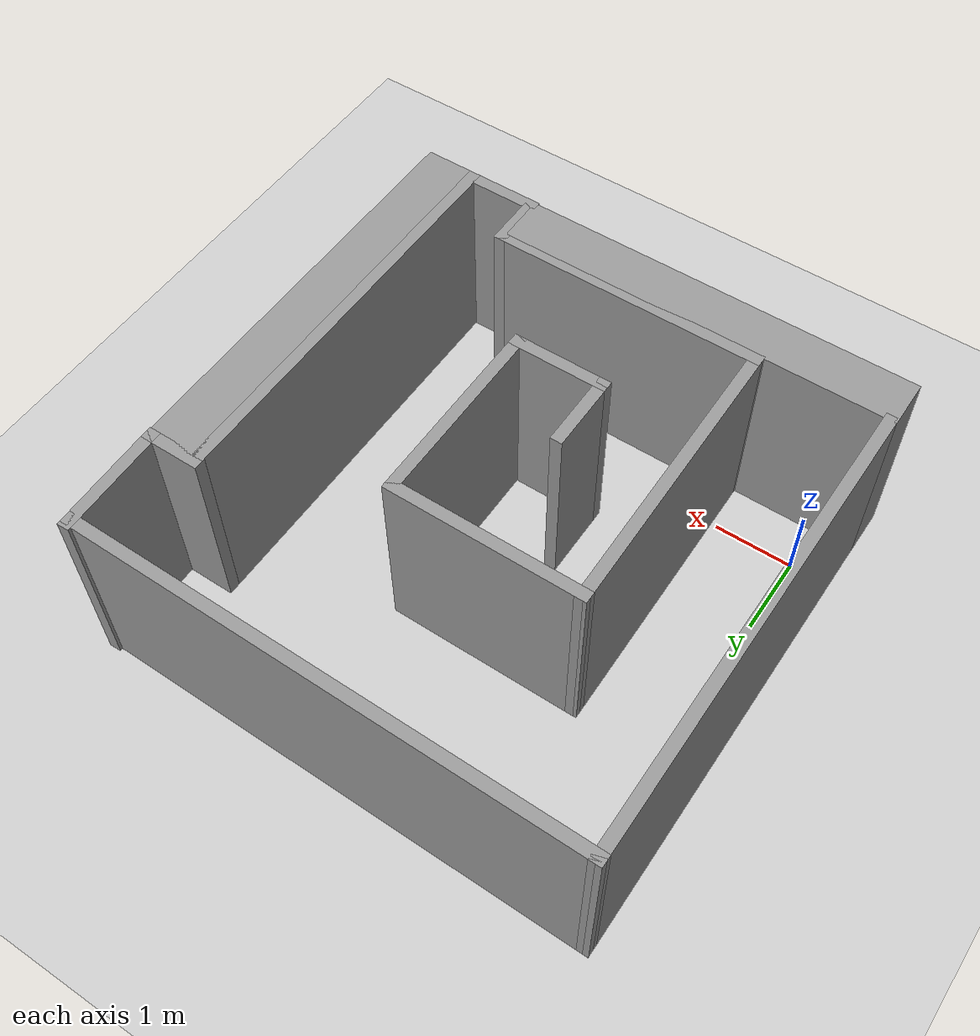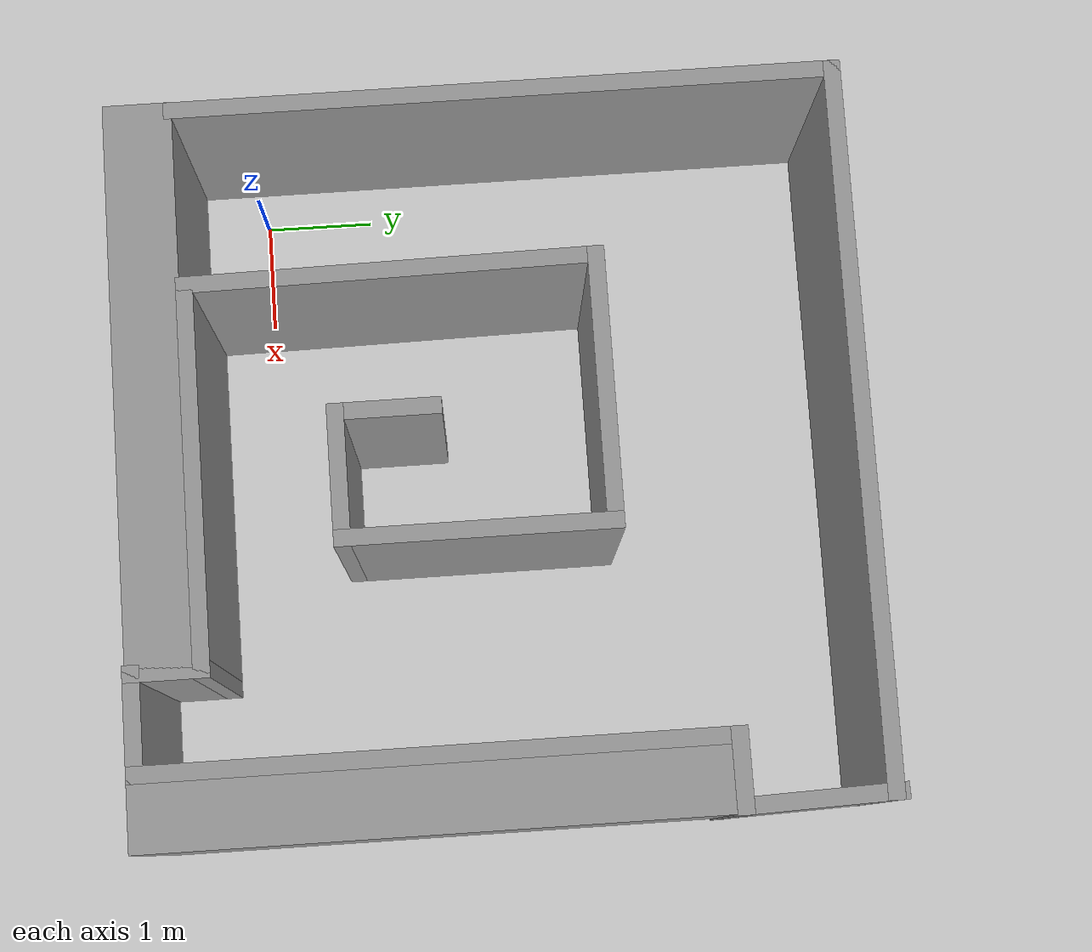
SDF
<sdf version="1.7">
 <world name="default">
  <scene><ambient>0.4 0.4 0.4 1</ambient><background>0.7 0.7 0.7 1</background><shadows>1</shadows></scene>
  <light name="sun" type="directional">
   <pose>0 0 10 0 -0 0</pose>
   <diffuse>0.8 0.8 0.8 1</diffuse>
   <specular>0.2 0.2 0.2 1</specular>
   <attenuation>
    <range>1000</range>
    <constant>0.9</constant>
    <linear>0.01</linear>
    <quadratic>0.001</quadratic>
   </attenuation>
   <direction>-0.5 0.1 -0.9</direction>
   <spot><inner_angle>0</inner_angle><outer_angle>0</outer_angle><falloff>0</falloff></spot>
  </light>
  <model name="ground_plane">
   <static>1</static>
   <link name="link">
    <collision name="collision">
     <geometry><plane><normal>0 0 1</normal><size>100 100</size></plane></geometry>
     <surface>
      <contact><collide_bitmask>65535</collide_bitmask></contact>
      <friction><ode><mu>100</mu><mu2>50</mu2></ode></friction>
     </surface>
    </collision>
    <visual name="visual">
     <cast_shadows>0</cast_shadows>
     <geometry><plane><normal>0 0 1</normal><size>100 100</size></plane></geometry>
     <material>
      <script><uri>file://media/materials/scripts/gazebo.material</uri><name>Gazebo/Grey</name></script>
     </material>
    </visual>
   </link>
  </model>
  <physics type="ode">
   <real_time_update_rate>1000</real_time_update_rate>
   <max_step_size>0.001</max_step_size>
   <real_time_factor>1</real_time_factor>
   <ode>
    <solver>
     <type>quick</type>
     <iters>150</iters>
     <precon_iters>0</precon_iters>
     <sor>1.4</sor>
     <use_dynamic_moi_rescaling>1</use_dynamic_moi_rescaling>
    </solver>
    <constraints>
     <cfm>1e-05</cfm>
     <erp>0.2</erp>
     <contact_max_correcting_vel>2000</contact_max_correcting_vel>
     <contact_surface_layer>0.01</contact_surface_layer>
    </constraints>
   </ode>
  </physics>
  <gravity>0 0 -9.8</gravity>
  <magnetic_field>6e-06 2.3e-05 -4.2e-05</magnetic_field>
  <atmosphere type="adiabatic"/>
  <spherical_coordinates>
   <surface_model>EARTH_WGS84</surface_model>
   <latitude_deg>0</latitude_deg>
   <longitude_deg>0</longitude_deg>
   <elevation>0</elevation>
   <heading_deg>0</heading_deg>
  </spherical_coordinates>
  <audio><device>default</device></audio>
  <model name="world1">
   <link name="Wall_10">
    <pose>3.20196 -4.37945 0 0 -0 1.5708</pose>
    <visual name="Wall_10_Visual">
     <pose>0 0 1.25 0 -0 0</pose>
     <geometry><box><size>0.75 0.15 2.5</size></box></geometry>
     <material>
      <script><uri>file://media/materials/scripts/gazebo.material</uri><name>Gazebo/Grey</name></script>
      <ambient>1 1 1 1</ambient>
      <shader type="pixel"/>
     </material>
     <meta><layer>0</layer></meta>
    </visual>
    <collision name="Wall_10_Collision">
     <pose>0 0 1.25 0 -0 0</pose>
     <geometry><box><size>0.75 0.15 2.5</size></box></geometry>
     <surface>
      <friction>
       <ode><mu>1</mu><mu2>1</mu2><fdir1>0 0 0</fdir1><slip1>0</slip1><slip2>0</slip2></ode>
       <torsional>
        <coefficient>1</coefficient>
        <patch_radius>0</patch_radius>
        <surface_radius>0</surface_radius>
        <use_patch_radius>1</use_patch_radius>
        <ode><slip>0</slip></ode>
       </torsional>
      </friction>
      <bounce><restitution_coefficient>0</restitution_coefficient><threshold>1e+06</threshold></bounce>
      <contact>
       <collide_without_contact>0</collide_without_contact>
       <collide_without_contact_bitmask>1</collide_without_contact_bitmask>
       <collide_bitmask>1</collide_bitmask>
       <ode>
        <soft_cfm>0</soft_cfm>
        <soft_erp>0.2</soft_erp>
        <kp>1e+13</kp>
        <kd>1</kd>
        <max_vel>0.01</max_vel>
        <min_depth>0</min_depth>
       </ode>
       <bullet>
        <split_impulse>1</split_impulse>
        <split_impulse_penetration_threshold>-0.01</split_impulse_penetration_threshold>
        <soft_cfm>0</soft_cfm>
        <soft_erp>0.2</soft_erp>
        <kp>1e+13</kp>
        <kd>1</kd>
       </bullet>
      </contact>
     </surface>
    </collision>
   </link>
   <link name="Wall_11">
    <pose>1.52696 -4.07945 0 0 -0 3.14159</pose>
    <visual name="Wall_11_Visual">
     <pose>0 0 1.25 0 -0 0</pose>
     <geometry><box><size>3.5 0.15 2.5</size></box></geometry>
     <material>
      <script><uri>file://media/materials/scripts/gazebo.material</uri><name>Gazebo/Grey</name></script>
      <ambient>1 1 1 1</ambient>
      <shader type="pixel"/>
     </material>
     <meta><layer>0</layer></meta>
    </visual>
    <collision name="Wall_11_Collision">
     <pose>0 0 1.25 0 -0 0</pose>
     <geometry><box><size>3.5 0.15 2.5</size></box></geometry>
     <surface>
      <friction>
       <ode><mu>1</mu><mu2>1</mu2><fdir1>0 0 0</fdir1><slip1>0</slip1><slip2>0</slip2></ode>
       <torsional>
        <coefficient>1</coefficient>
        <patch_radius>0</patch_radius>
        <surface_radius>0</surface_radius>
        <use_patch_radius>1</use_patch_radius>
        <ode><slip>0</slip></ode>
       </torsional>
      </friction>
      <bounce><restitution_coefficient>0</restitution_coefficient><threshold>1e+06</threshold></bounce>
      <contact>
       <collide_without_contact>0</collide_without_contact>
       <collide_without_contact_bitmask>1</collide_without_contact_bitmask>
       <collide_bitmask>1</collide_bitmask>
       <ode>
        <soft_cfm>0</soft_cfm>
        <soft_erp>0.2</soft_erp>
        <kp>1e+13</kp>
        <kd>1</kd>
        <max_vel>0.01</max_vel>
        <min_depth>0</min_depth>
       </ode>
       <bullet>
        <split_impulse>1</split_impulse>
        <split_impulse_penetration_threshold>-0.01</split_impulse_penetration_threshold>
        <soft_cfm>0</soft_cfm>
        <soft_erp>0.2</soft_erp>
        <kp>1e+13</kp>
        <kd>1</kd>
       </bullet>
      </contact>
     </surface>
    </collision>
   </link>
   <link name="Wall_12">
    <pose>-0.168149 -2.27945 0 0 -0 1.58197</pose>
    <visual name="Wall_12_Visual">
     <pose>0 0 1.25 0 -0 0</pose>
     <geometry><box><size>3.7509 0.15 2.5</size></box></geometry>
     <material>
      <script><uri>file://media/materials/scripts/gazebo.material</uri><name>Gazebo/Grey</name></script>
      <ambient>1 1 1 1</ambient>
      <shader type="pixel"/>
     </material>
     <meta><layer>0</layer></meta>
    </visual>
    <collision name="Wall_12_Collision">
     <pose>0 0 1.25 0 -0 0</pose>
     <geometry><box><size>3.7509 0.15 2.5</size></box></geometry>
     <surface>
      <friction>
       <ode><mu>1</mu><mu2>1</mu2><fdir1>0 0 0</fdir1><slip1>0</slip1><slip2>0</slip2></ode>
       <torsional>
        <coefficient>1</coefficient>
        <patch_radius>0</patch_radius>
        <surface_radius>0</surface_radius>
        <use_patch_radius>1</use_patch_radius>
        <ode><slip>0</slip></ode>
       </torsional>
      </friction>
      <bounce><restitution_coefficient>0</restitution_coefficient><threshold>1e+06</threshold></bounce>
      <contact>
       <collide_without_contact>0</collide_without_contact>
       <collide_without_contact_bitmask>1</collide_without_contact_bitmask>
       <collide_bitmask>1</collide_bitmask>
       <ode>
        <soft_cfm>0</soft_cfm>
        <soft_erp>0.2</soft_erp>
        <kp>1e+13</kp>
        <kd>1</kd>
        <max_vel>0.01</max_vel>
        <min_depth>0</min_depth>
       </ode>
       <bullet>
        <split_impulse>1</split_impulse>
        <split_impulse_penetration_threshold>-0.01</split_impulse_penetration_threshold>
        <soft_cfm>0</soft_cfm>
        <soft_erp>0.2</soft_erp>
        <kp>1e+13</kp>
        <kd>1</kd>
       </bullet>
      </contact>
     </surface>
    </collision>
   </link>
   <link name="Wall_15">
    <pose>0.986738 -0.479448 0 0 -0 0</pose>
    <visual name="Wall_15_Visual">
     <pose>0 0 1.25 0 -0 0</pose>
     <geometry><box><size>2.5 0.15 2.5</size></box></geometry>
     <material>
      <script><uri>file://media/materials/scripts/gazebo.material</uri><name>Gazebo/Grey</name></script>
      <ambient>1 1 1 1</ambient>
      <shader type="pixel"/>
     </material>
     <meta><layer>0</layer></meta>
    </visual>
    <collision name="Wall_15_Collision">
     <pose>0 0 1.25 0 -0 0</pose>
     <geometry><box><size>2.5 0.15 2.5</size></box></geometry>
     <surface>
      <friction>
       <ode><mu>1</mu><mu2>1</mu2><fdir1>0 0 0</fdir1><slip1>0</slip1><slip2>0</slip2></ode>
       <torsional>
        <coefficient>1</coefficient>
        <patch_radius>0</patch_radius>
        <surface_radius>0</surface_radius>
        <use_patch_radius>1</use_patch_radius>
        <ode><slip>0</slip></ode>
       </torsional>
      </friction>
      <bounce><restitution_coefficient>0</restitution_coefficient><threshold>1e+06</threshold></bounce>
      <contact>
       <collide_without_contact>0</collide_without_contact>
       <collide_without_contact_bitmask>1</collide_without_contact_bitmask>
       <collide_bitmask>1</collide_bitmask>
       <ode>
        <soft_cfm>0</soft_cfm>
        <soft_erp>0.2</soft_erp>
        <kp>1e+13</kp>
        <kd>1</kd>
        <max_vel>0.01</max_vel>
        <min_depth>0</min_depth>
       </ode>
       <bullet>
        <split_impulse>1</split_impulse>
        <split_impulse_penetration_threshold>-0.01</split_impulse_penetration_threshold>
        <soft_cfm>0</soft_cfm>
        <soft_erp>0.2</soft_erp>
        <kp>1e+13</kp>
        <kd>1</kd>
       </bullet>
      </contact>
     </surface>
    </collision>
   </link>
   <link name="Wall_16">
    <pose>2.16174 -1.65445 0 0 0 -1.5708</pose>
    <visual name="Wall_16_Visual">
     <pose>0 0 1.25 0 -0 0</pose>
     <geometry><box><size>2.5 0.15 2.5</size></box></geometry>
     <material>
      <script><uri>file://media/materials/scripts/gazebo.material</uri><name>Gazebo/Grey</name></script>
      <ambient>1 1 1 1</ambient>
      <shader type="pixel"/>
     </material>
     <meta><layer>0</layer></meta>
    </visual>
    <collision name="Wall_16_Collision">
     <pose>0 0 1.25 0 -0 0</pose>
     <geometry><box><size>2.5 0.15 2.5</size></box></geometry>
     <surface>
      <friction>
       <ode><mu>1</mu><mu2>1</mu2><fdir1>0 0 0</fdir1><slip1>0</slip1><slip2>0</slip2></ode>
       <torsional>
        <coefficient>1</coefficient>
        <patch_radius>0</patch_radius>
        <surface_radius>0</surface_radius>
        <use_patch_radius>1</use_patch_radius>
        <ode><slip>0</slip></ode>
       </torsional>
      </friction>
      <bounce><restitution_coefficient>0</restitution_coefficient><threshold>1e+06</threshold></bounce>
      <contact>
       <collide_without_contact>0</collide_without_contact>
       <collide_without_contact_bitmask>1</collide_without_contact_bitmask>
       <collide_bitmask>1</collide_bitmask>
       <ode>
        <soft_cfm>0</soft_cfm>
        <soft_erp>0.2</soft_erp>
        <kp>1e+13</kp>
        <kd>1</kd>
        <max_vel>0.01</max_vel>
        <min_depth>0</min_depth>
       </ode>
       <bullet>
        <split_impulse>1</split_impulse>
        <split_impulse_penetration_threshold>-0.01</split_impulse_penetration_threshold>
        <soft_cfm>0</soft_cfm>
        <soft_erp>0.2</soft_erp>
        <kp>1e+13</kp>
        <kd>1</kd>
       </bullet>
      </contact>
     </surface>
    </collision>
   </link>
   <link name="Wall_17">
    <pose>1.61174 -2.82945 0 0 -0 3.14159</pose>
    <visual name="Wall_17_Visual">
     <pose>0 0 1.25 0 -0 0</pose>
     <geometry><box><size>1.25 0.15 2.5</size></box></geometry>
     <material>
      <script><uri>file://media/materials/scripts/gazebo.material</uri><name>Gazebo/Grey</name></script>
      <ambient>1 1 1 1</ambient>
      <shader type="pixel"/>
     </material>
     <meta><layer>0</layer></meta>
    </visual>
    <collision name="Wall_17_Collision">
     <pose>0 0 1.25 0 -0 0</pose>
     <geometry><box><size>1.25 0.15 2.5</size></box></geometry>
     <surface>
      <friction>
       <ode><mu>1</mu><mu2>1</mu2><fdir1>0 0 0</fdir1><slip1>0</slip1><slip2>0</slip2></ode>
       <torsional>
        <coefficient>1</coefficient>
        <patch_radius>0</patch_radius>
        <surface_radius>0</surface_radius>
        <use_patch_radius>1</use_patch_radius>
        <ode><slip>0</slip></ode>
       </torsional>
      </friction>
      <bounce><restitution_coefficient>0</restitution_coefficient><threshold>1e+06</threshold></bounce>
      <contact>
       <collide_without_contact>0</collide_without_contact>
       <collide_without_contact_bitmask>1</collide_without_contact_bitmask>
       <collide_bitmask>1</collide_bitmask>
       <ode>
        <soft_cfm>0</soft_cfm>
        <soft_erp>0.2</soft_erp>
        <kp>1e+13</kp>
        <kd>1</kd>
        <max_vel>0.01</max_vel>
        <min_depth>0</min_depth>
       </ode>
       <bullet>
        <split_impulse>1</split_impulse>
        <split_impulse_penetration_threshold>-0.01</split_impulse_penetration_threshold>
        <soft_cfm>0</soft_cfm>
        <soft_erp>0.2</soft_erp>
        <kp>1e+13</kp>
        <kd>1</kd>
       </bullet>
      </contact>
     </surface>
    </collision>
   </link>
   <link name="Wall_17_clone">
    <pose>0.681846 -4.4258 0 0 -0 3.14159</pose>
    <inertial>
     <inertia><ixx>0</ixx><ixy>0</ixy><ixz>0</ixz><iyy>0</iyy><iyz>0</iyz><izz>0</izz></inertia>
     <mass>0</mass>
    </inertial>
    <visual name="Wall_17_Visual">
     <pose>0 0 1.25 0 -0 0</pose>
     <geometry><box><size>4.99393 0.608254 2.5</size></box></geometry>
     <material>
      <script><uri>file://media/materials/scripts/gazebo.material</uri><name>Gazebo/Grey</name></script>
      <ambient>1 1 1 1</ambient>
      <shader type="pixel"/>
     </material>
     <meta><layer>0</layer></meta>
    </visual>
    <collision name="Wall_17_Collision">
     <pose>0 0 1.25 0 -0 0</pose>
     <geometry><box><size>4.99393 0.608254 2.5</size></box></geometry>
     <surface>
      <friction>
       <ode><mu>1</mu><mu2>1</mu2><fdir1>0 0 0</fdir1><slip1>0</slip1><slip2>0</slip2></ode>
       <torsional>
        <coefficient>1</coefficient>
        <patch_radius>0</patch_radius>
        <surface_radius>0</surface_radius>
        <use_patch_radius>1</use_patch_radius>
        <ode><slip>0</slip></ode>
       </torsional>
      </friction>
      <bounce><restitution_coefficient>0</restitution_coefficient><threshold>1e+06</threshold></bounce>
      <contact>
       <collide_without_contact>0</collide_without_contact>
       <collide_without_contact_bitmask>1</collide_without_contact_bitmask>
       <collide_bitmask>1</collide_bitmask>
       <ode>
        <soft_cfm>0</soft_cfm>
        <soft_erp>0.2</soft_erp>
        <kp>1e+13</kp>
        <kd>1</kd>
        <max_vel>0.01</max_vel>
        <min_depth>0</min_depth>
       </ode>
       <bullet>
        <split_impulse>1</split_impulse>
        <split_impulse_penetration_threshold>-0.01</split_impulse_penetration_threshold>
        <soft_cfm>0</soft_cfm>
        <soft_erp>0.2</soft_erp>
        <kp>1e+13</kp>
        <kd>1</kd>
       </bullet>
      </contact>
     </surface>
    </collision>
   </link>
   <link name="Wall_18">
    <pose>1.06174 -2.40445 0 0 -0 1.5708</pose>
    <visual name="Wall_18_Visual">
     <pose>0 0 1.25 0 -0 0</pose>
     <geometry><box><size>1 0.15 2.5</size></box></geometry>
     <material>
      <script><uri>file://media/materials/scripts/gazebo.material</uri><name>Gazebo/Grey</name></script>
      <ambient>1 1 1 1</ambient>
      <shader type="pixel"/>
     </material>
     <meta><layer>0</layer></meta>
    </visual>
    <collision name="Wall_18_Collision">
     <pose>0 0 1.25 0 -0 0</pose>
     <geometry><box><size>1 0.15 2.5</size></box></geometry>
     <surface>
      <friction>
       <ode><mu>1</mu><mu2>1</mu2><fdir1>0 0 0</fdir1><slip1>0</slip1><slip2>0</slip2></ode>
       <torsional>
        <coefficient>1</coefficient>
        <patch_radius>0</patch_radius>
        <surface_radius>0</surface_radius>
        <use_patch_radius>1</use_patch_radius>
        <ode><slip>0</slip></ode>
       </torsional>
      </friction>
      <bounce><restitution_coefficient>0</restitution_coefficient><threshold>1e+06</threshold></bounce>
      <contact>
       <collide_without_contact>0</collide_without_contact>
       <collide_without_contact_bitmask>1</collide_without_contact_bitmask>
       <collide_bitmask>1</collide_bitmask>
       <ode>
        <soft_cfm>0</soft_cfm>
        <soft_erp>0.2</soft_erp>
        <kp>1e+13</kp>
        <kd>1</kd>
        <max_vel>0.01</max_vel>
        <min_depth>0</min_depth>
       </ode>
       <bullet>
        <split_impulse>1</split_impulse>
        <split_impulse_penetration_threshold>-0.01</split_impulse_penetration_threshold>
        <soft_cfm>0</soft_cfm>
        <soft_erp>0.2</soft_erp>
        <kp>1e+13</kp>
        <kd>1</kd>
       </bullet>
      </contact>
     </surface>
    </collision>
   </link>
   <link name="Wall_2">
    <pose>-1.73826 -1.19467 0 0 -0 1.5708</pose>
    <visual name="Wall_2_Visual">
     <pose>0 0 1.25 0 -0 0</pose>
     <geometry><box><size>6 0.15 2.5</size></box></geometry>
     <material>
      <script><uri>file://media/materials/scripts/gazebo.material</uri><name>Gazebo/Grey</name></script>
      <ambient>1 1 1 1</ambient>
      <shader type="pixel"/>
     </material>
     <meta><layer>0</layer></meta>
    </visual>
    <collision name="Wall_2_Collision">
     <pose>0 0 1.25 0 -0 0</pose>
     <geometry><box><size>6 0.15 2.5</size></box></geometry>
     <surface>
      <friction>
       <ode><mu>1</mu><mu2>1</mu2><fdir1>0 0 0</fdir1><slip1>0</slip1><slip2>0</slip2></ode>
       <torsional>
        <coefficient>1</coefficient>
        <patch_radius>0</patch_radius>
        <surface_radius>0</surface_radius>
        <use_patch_radius>1</use_patch_radius>
        <ode><slip>0</slip></ode>
       </torsional>
      </friction>
      <bounce><restitution_coefficient>0</restitution_coefficient><threshold>1e+06</threshold></bounce>
      <contact>
       <collide_without_contact>0</collide_without_contact>
       <collide_without_contact_bitmask>1</collide_without_contact_bitmask>
       <collide_bitmask>1</collide_bitmask>
       <ode>
        <soft_cfm>0</soft_cfm>
        <soft_erp>0.2</soft_erp>
        <kp>1e+13</kp>
        <kd>1</kd>
        <max_vel>0.01</max_vel>
        <min_depth>0</min_depth>
       </ode>
       <bullet>
        <split_impulse>1</split_impulse>
        <split_impulse_penetration_threshold>-0.01</split_impulse_penetration_threshold>
        <soft_cfm>0</soft_cfm>
        <soft_erp>0.2</soft_erp>
        <kp>1e+13</kp>
        <kd>1</kd>
       </bullet>
      </contact>
     </surface>
    </collision>
   </link>
   <link name="Wall_3">
    <pose>1.43674 1.71021 0 0 0 -0.006335</pose>
    <visual name="Wall_3_Visual">
     <pose>0 0 1.25 0 -0 0</pose>
     <geometry><box><size>6.5 0.15 2.5</size></box></geometry>
     <material>
      <script><uri>file://media/materials/scripts/gazebo.material</uri><name>Gazebo/Grey</name></script>
      <ambient>1 1 1 1</ambient>
      <shader type="pixel"/>
     </material>
     <meta><layer>0</layer></meta>
    </visual>
    <collision name="Wall_3_Collision">
     <pose>0 0 1.25 0 -0 0</pose>
     <geometry><box><size>6.5 0.15 2.5</size></box></geometry>
     <surface>
      <friction>
       <ode><mu>1</mu><mu2>1</mu2><fdir1>0 0 0</fdir1><slip1>0</slip1><slip2>0</slip2></ode>
       <torsional>
        <coefficient>1</coefficient>
        <patch_radius>0</patch_radius>
        <surface_radius>0</surface_radius>
        <use_patch_radius>1</use_patch_radius>
        <ode><slip>0</slip></ode>
       </torsional>
      </friction>
      <bounce><restitution_coefficient>0</restitution_coefficient><threshold>1e+06</threshold></bounce>
      <contact>
       <collide_without_contact>0</collide_without_contact>
       <collide_without_contact_bitmask>1</collide_without_contact_bitmask>
       <collide_bitmask>1</collide_bitmask>
       <ode>
        <soft_cfm>0</soft_cfm>
        <soft_erp>0.2</soft_erp>
        <kp>1e+13</kp>
        <kd>1</kd>
        <max_vel>0.01</max_vel>
        <min_depth>0</min_depth>
       </ode>
       <bullet>
        <split_impulse>1</split_impulse>
        <split_impulse_penetration_threshold>-0.01</split_impulse_penetration_threshold>
        <soft_cfm>0</soft_cfm>
        <soft_erp>0.2</soft_erp>
        <kp>1e+13</kp>
        <kd>1</kd>
       </bullet>
      </contact>
     </surface>
    </collision>
   </link>
   <link name="Wall_4">
    <pose>4.63185 1.07544 0 0 0 -1.54009</pose>
    <visual name="Wall_4_Visual">
     <pose>0 0 1.25 0 -0 0</pose>
     <geometry><box><size>1.46039 0.15 2.5</size></box></geometry>
     <material>
      <script><uri>file://media/materials/scripts/gazebo.material</uri><name>Gazebo/Grey</name></script>
      <ambient>1 1 1 1</ambient>
      <shader type="pixel"/>
     </material>
     <meta><layer>0</layer></meta>
    </visual>
    <collision name="Wall_4_Collision">
     <pose>0 0 1.25 0 -0 0</pose>
     <geometry><box><size>1.46039 0.15 2.5</size></box></geometry>
     <surface>
      <friction>
       <ode><mu>1</mu><mu2>1</mu2><fdir1>0 0 0</fdir1><slip1>0</slip1><slip2>0</slip2></ode>
       <torsional>
        <coefficient>1</coefficient>
        <patch_radius>0</patch_radius>
        <surface_radius>0</surface_radius>
        <use_patch_radius>1</use_patch_radius>
        <ode><slip>0</slip></ode>
       </torsional>
      </friction>
      <bounce><restitution_coefficient>0</restitution_coefficient><threshold>1e+06</threshold></bounce>
      <contact>
       <collide_without_contact>0</collide_without_contact>
       <collide_without_contact_bitmask>1</collide_without_contact_bitmask>
       <collide_bitmask>1</collide_bitmask>
       <ode>
        <soft_cfm>0</soft_cfm>
        <soft_erp>0.2</soft_erp>
        <kp>1e+13</kp>
        <kd>1</kd>
        <max_vel>0.01</max_vel>
        <min_depth>0</min_depth>
       </ode>
       <bullet>
        <split_impulse>1</split_impulse>
        <split_impulse_penetration_threshold>-0.01</split_impulse_penetration_threshold>
        <soft_cfm>0</soft_cfm>
        <soft_erp>0.2</soft_erp>
        <kp>1e+13</kp>
        <kd>1</kd>
       </bullet>
      </contact>
     </surface>
    </collision>
   </link>
   <link name="Wall_7">
    <pose>4.35196 0.420552 0 0 -0 3.14159</pose>
    <visual name="Wall_7_Visual">
     <pose>0 0 1.25 0 -0 0</pose>
     <geometry><box><size>0.75 0.15 2.5</size></box></geometry>
     <material>
      <script><uri>file://media/materials/scripts/gazebo.material</uri><name>Gazebo/Grey</name></script>
      <ambient>1 1 1 1</ambient>
      <shader type="pixel"/>
     </material>
     <meta><layer>0</layer></meta>
    </visual>
    <collision name="Wall_7_Collision">
     <pose>0 0 1.25 0 -0 0</pose>
     <geometry><box><size>0.75 0.15 2.5</size></box></geometry>
     <surface>
      <friction>
       <ode><mu>1</mu><mu2>1</mu2><fdir1>0 0 0</fdir1><slip1>0</slip1><slip2>0</slip2></ode>
       <torsional>
        <coefficient>1</coefficient>
        <patch_radius>0</patch_radius>
        <surface_radius>0</surface_radius>
        <use_patch_radius>1</use_patch_radius>
        <ode><slip>0</slip></ode>
       </torsional>
      </friction>
      <bounce><restitution_coefficient>0</restitution_coefficient><threshold>1e+06</threshold></bounce>
      <contact>
       <collide_without_contact>0</collide_without_contact>
       <collide_without_contact_bitmask>1</collide_without_contact_bitmask>
       <collide_bitmask>1</collide_bitmask>
       <ode>
        <soft_cfm>0</soft_cfm>
        <soft_erp>0.2</soft_erp>
        <kp>1e+13</kp>
        <kd>1</kd>
        <max_vel>0.01</max_vel>
        <min_depth>0</min_depth>
       </ode>
       <bullet>
        <split_impulse>1</split_impulse>
        <split_impulse_penetration_threshold>-0.01</split_impulse_penetration_threshold>
        <soft_cfm>0</soft_cfm>
        <soft_erp>0.2</soft_erp>
        <kp>1e+13</kp>
        <kd>1</kd>
       </bullet>
      </contact>
     </surface>
    </collision>
   </link>
   <link name="Wall_8">
    <pose>4.05197 -2.12945 0 0 0 -1.5708</pose>
    <visual name="Wall_8_Visual">
     <pose>0 0 1.25 0 -0 0</pose>
     <geometry><box><size>5.25 0.15 2.5</size></box></geometry>
     <material>
      <script><uri>file://media/materials/scripts/gazebo.material</uri><name>Gazebo/Grey</name></script>
      <ambient>1 1 1 1</ambient>
      <shader type="pixel"/>
     </material>
     <meta><layer>0</layer></meta>
    </visual>
    <collision name="Wall_8_Collision">
     <pose>0 0 1.25 0 -0 0</pose>
     <geometry><box><size>5.25 0.15 2.5</size></box></geometry>
     <surface>
      <friction>
       <ode><mu>1</mu><mu2>1</mu2><fdir1>0 0 0</fdir1><slip1>0</slip1><slip2>0</slip2></ode>
       <torsional>
        <coefficient>1</coefficient>
        <patch_radius>0</patch_radius>
        <surface_radius>0</surface_radius>
        <use_patch_radius>1</use_patch_radius>
        <ode><slip>0</slip></ode>
       </torsional>
      </friction>
      <bounce><restitution_coefficient>0</restitution_coefficient><threshold>1e+06</threshold></bounce>
      <contact>
       <collide_without_contact>0</collide_without_contact>
       <collide_without_contact_bitmask>1</collide_without_contact_bitmask>
       <collide_bitmask>1</collide_bitmask>
       <ode>
        <soft_cfm>0</soft_cfm>
        <soft_erp>0.2</soft_erp>
        <kp>1e+13</kp>
        <kd>1</kd>
        <max_vel>0.01</max_vel>
        <min_depth>0</min_depth>
       </ode>
       <bullet>
        <split_impulse>1</split_impulse>
        <split_impulse_penetration_threshold>-0.01</split_impulse_penetration_threshold>
        <soft_cfm>0</soft_cfm>
        <soft_erp>0.2</soft_erp>
        <kp>1e+13</kp>
        <kd>1</kd>
       </bullet>
      </contact>
     </surface>
    </collision>
   </link>
   <link name="Wall_8_clone">
    <pose>4.40121 -2.1297 0 0 0 -1.5708</pose>
    <inertial>
     <inertia><ixx>0</ixx><ixy>0</ixy><ixz>0</ixz><iyy>0</iyy><iyz>0</iyz><izz>0</izz></inertia>
     <mass>0</mass>
    </inertial>
    <visual name="Wall_8_Visual">
     <pose>0 0 1.25 0 -0 0</pose>
     <geometry><box><size>5.25 0.627725 2.5</size></box></geometry>
     <material>
      <script><uri>file://media/materials/scripts/gazebo.material</uri><name>Gazebo/Grey</name></script>
      <ambient>1 1 1 1</ambient>
      <shader type="pixel"/>
     </material>
     <meta><layer>0</layer></meta>
    </visual>
    <collision name="Wall_8_Collision">
     <pose>0 0 1.25 0 -0 0</pose>
     <geometry><box><size>5.25 0.627725 2.5</size></box></geometry>
     <surface>
      <friction>
       <ode><mu>1</mu><mu2>1</mu2><fdir1>0 0 0</fdir1><slip1>0</slip1><slip2>0</slip2></ode>
       <torsional>
        <coefficient>1</coefficient>
        <patch_radius>0</patch_radius>
        <surface_radius>0</surface_radius>
        <use_patch_radius>1</use_patch_radius>
        <ode><slip>0</slip></ode>
       </torsional>
      </friction>
      <bounce><restitution_coefficient>0</restitution_coefficient><threshold>1e+06</threshold></bounce>
      <contact>
       <collide_without_contact>0</collide_without_contact>
       <collide_without_contact_bitmask>1</collide_without_contact_bitmask>
       <collide_bitmask>1</collide_bitmask>
       <ode>
        <soft_cfm>0</soft_cfm>
        <soft_erp>0.2</soft_erp>
        <kp>1e+13</kp>
        <kd>1</kd>
        <max_vel>0.01</max_vel>
        <min_depth>0</min_depth>
       </ode>
       <bullet>
        <split_impulse>1</split_impulse>
        <split_impulse_penetration_threshold>-0.01</split_impulse_penetration_threshold>
        <soft_cfm>0</soft_cfm>
        <soft_erp>0.2</soft_erp>
        <kp>1e+13</kp>
        <kd>1</kd>
       </bullet>
      </contact>
     </surface>
    </collision>
   </link>
   <link name="Wall_9">
    <pose>3.62697 -4.67945 0 0 -0 3.14159</pose>
    <visual name="Wall_9_Visual">
     <pose>0 0 1.25 0 -0 0</pose>
     <geometry><box><size>1 0.15 2.5</size></box></geometry>
     <material>
      <script><uri>file://media/materials/scripts/gazebo.material</uri><name>Gazebo/Grey</name></script>
      <ambient>1 1 1 1</ambient>
      <shader type="pixel"/>
     </material>
     <meta><layer>0</layer></meta>
    </visual>
    <collision name="Wall_9_Collision">
     <pose>0 0 1.25 0 -0 0</pose>
     <geometry><box><size>1 0.15 2.5</size></box></geometry>
     <surface>
      <friction>
       <ode><mu>1</mu><mu2>1</mu2><fdir1>0 0 0</fdir1><slip1>0</slip1><slip2>0</slip2></ode>
       <torsional>
        <coefficient>1</coefficient>
        <patch_radius>0</patch_radius>
        <surface_radius>0</surface_radius>
        <use_patch_radius>1</use_patch_radius>
        <ode><slip>0</slip></ode>
       </torsional>
      </friction>
      <bounce><restitution_coefficient>0</restitution_coefficient><threshold>1e+06</threshold></bounce>
      <contact>
       <collide_without_contact>0</collide_without_contact>
       <collide_without_contact_bitmask>1</collide_without_contact_bitmask>
       <collide_bitmask>1</collide_bitmask>
       <ode>
        <soft_cfm>0</soft_cfm>
        <soft_erp>0.2</soft_erp>
        <kp>1e+13</kp>
        <kd>1</kd>
        <max_vel>0.01</max_vel>
        <min_depth>0</min_depth>
       </ode>
       <bullet>
        <split_impulse>1</split_impulse>
        <split_impulse_penetration_threshold>-0.01</split_impulse_penetration_threshold>
        <soft_cfm>0</soft_cfm>
        <soft_erp>0.2</soft_erp>
        <kp>1e+13</kp>
        <kd>1</kd>
       </bullet>
      </contact>
     </surface>
    </collision>
   </link>
   <static>1</static>
   <pose>1.31164 3.52013 0 0 -0 0</pose>
  </model>
 </world>
</sdf>
